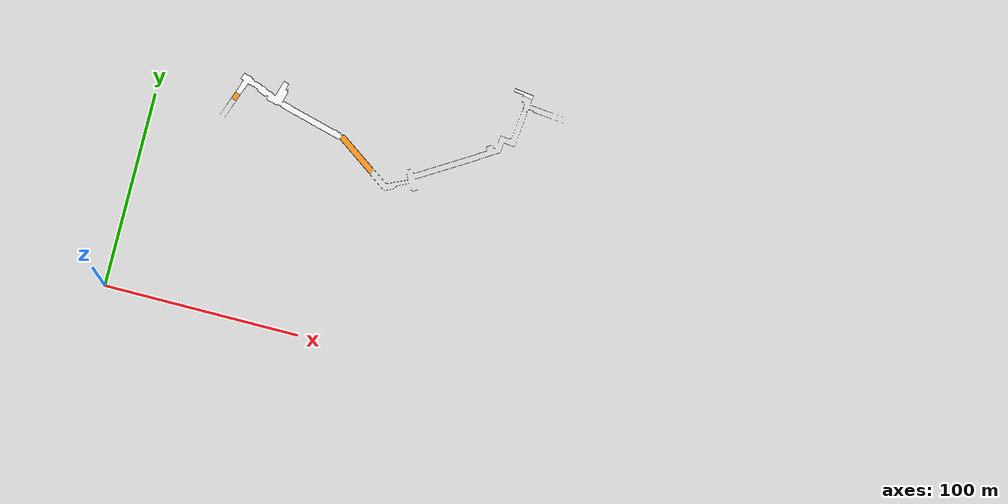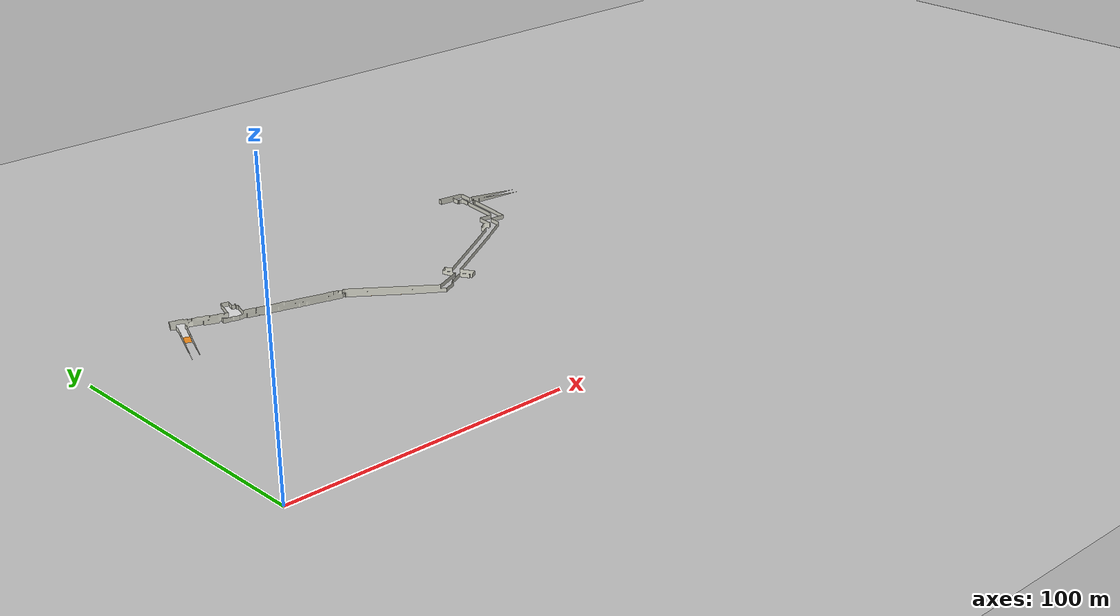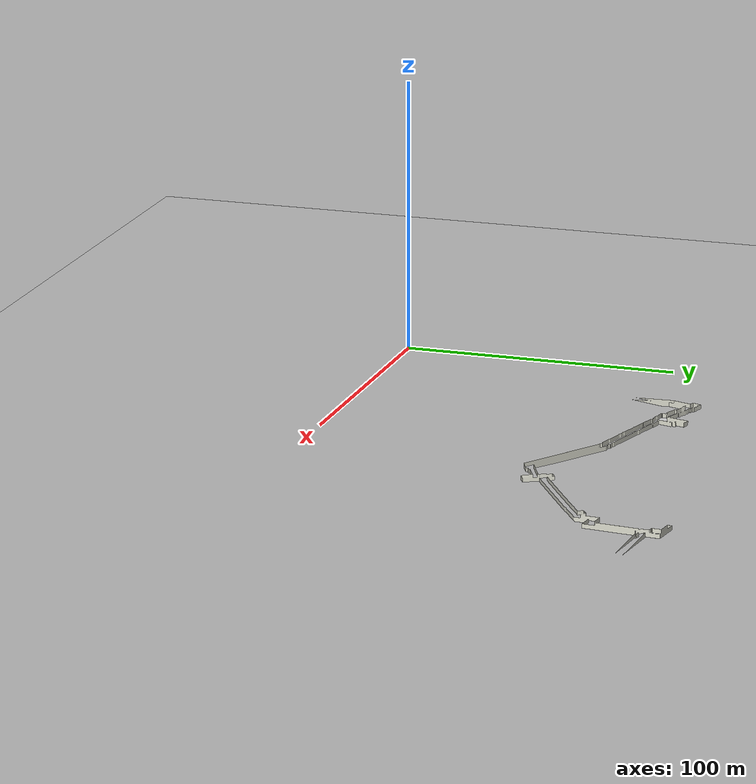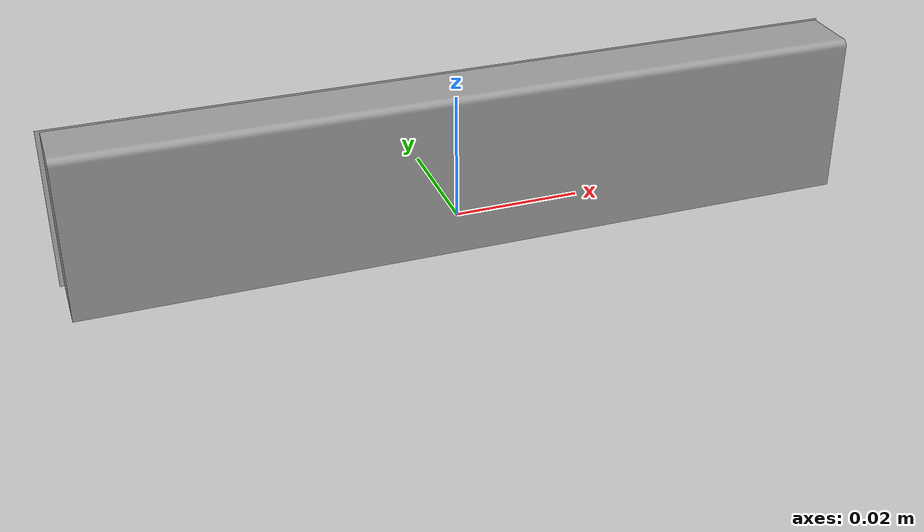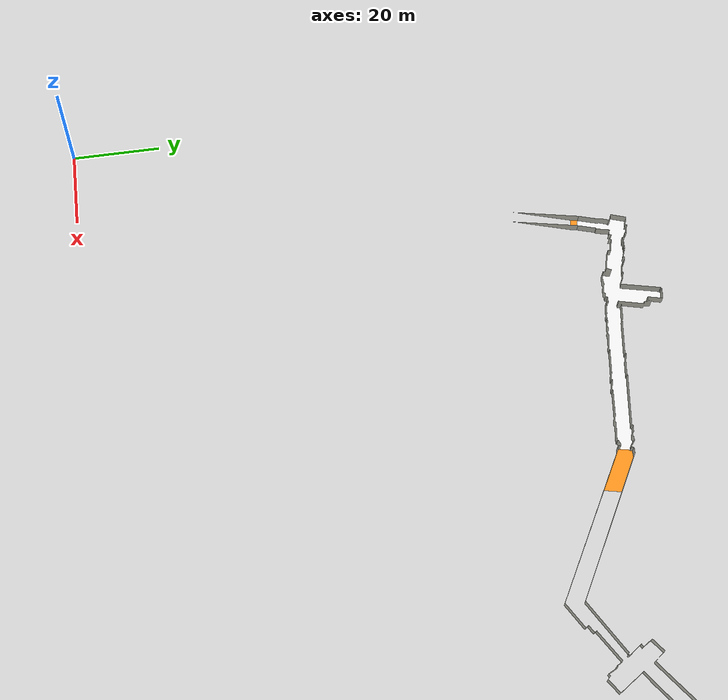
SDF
<sdf version="1.6">
 <world name="default">
  <physics type="ode">
   <gravity>0.000000 0.000000 -9.810000</gravity>
   <ode>
    <solver><type>quick</type><iters>20</iters><sor>1.000000</sor></solver>
    <constraints>
     <cfm>0.000000</cfm>
     <erp>0.200000</erp>
     <contact_max_correcting_vel>100.000000</contact_max_correcting_vel>
     <contact_surface_layer>0.000000</contact_surface_layer>
    </constraints>
   </ode>
   <real_time_update_rate>1000.000000</real_time_update_rate>
   <max_step_size>0.001000</max_step_size>
   <real_time_factor>1.000000</real_time_factor>
   <max_contacts>20</max_contacts>
  </physics>
  <light name="sun" type="directional">
   <pose>0 0 10 0 -0 0</pose>
   <diffuse>0.8 0.8 0.8 1</diffuse>
   <specular>0.2 0.2 0.2 1</specular>
   <attenuation>
    <range>1000</range>
    <constant>0.9</constant>
    <linear>0.01</linear>
    <quadratic>0.001</quadratic>
   </attenuation>
   <direction>-0.5 0.1 -0.9</direction>
  </light>
  <model name="ground_plane">
   <static>1</static>
   <link name="link">
    <visual name="visual">
     <cast_shadows>0</cast_shadows>
     <geometry><plane><normal>0 0 1</normal><size>100 100</size></plane></geometry>
     <material>
      <script><uri>file://media/materials/scripts/gazebo.material</uri><name>Gazebo/Grey</name></script>
     </material>
    </visual>
    <velocity_decay><linear>0</linear><angular>0</angular></velocity_decay>
   </link>
  </model>
  <scene><ambient>0.4 0.4 0.4 1</ambient><background>0.7 0.7 0.7 1</background><shadows>1</shadows></scene>
  <include><uri>model://med_1</uri></include>
  <model name="hospital">
   <static>1</static>
   <link name="link">
    <collision name="colision1">
     <geometry><mesh><uri>model://hospital_map/meshes/hospital_map.stl</uri><scale>1 1 1</scale></mesh></geometry>
     <surface><friction><ode><mu>1000.000000</mu><mu2>1000.000000</mu2></ode></friction></surface>
    </collision>
    <velocity_decay><linear>0.000000</linear><angular>0.000000</angular></velocity_decay>
    <visual name="visual_Floor_1">
     <geometry><mesh><uri>model://hospital_map/meshes/g1.stl</uri><scale>0.1 0.1 0.1</scale></mesh></geometry>
     <material>
      <script><uri>file://media/materials/scripts/gazebo.material</uri><name>Gazebo/White</name></script>
     </material>
    </visual>
    <visual name="visual_Wall_1">
     <geometry><mesh><uri>model://hospital_map/meshes/w1.stl</uri><scale>0.1 0.1 0.1</scale></mesh></geometry>
     <material>
      <script><uri>file://media/materials/scripts/gazebo.material</uri><name>Gazebo/PaintedWall</name></script>
     </material>
    </visual>
    <visual name="visual_Floor_Ramp_1">
     <geometry><mesh><uri>model://hospital_map/meshes/gr1.stl</uri><scale>0.1 0.1 0.1</scale></mesh></geometry>
     <material>
      <script><uri>file://media/materials/scripts/gazebo.material</uri><name>Gazebo/Orange</name></script>
     </material>
    </visual>
    <visual name="visual_Wall_Ramp_1">
     <geometry><mesh><uri>model://hospital_map/meshes/wr1.stl</uri><scale>0.1 0.1 0.1</scale></mesh></geometry>
     <material>
      <script><uri>file://media/materials/scripts/gazebo.material</uri><name>Gazebo/PaintedWall</name></script>
     </material>
    </visual>
    <visual name="visual_Floor_2">
     <geometry><mesh><uri>model://hospital_map/meshes/g2.stl</uri><scale>0.1 0.1 0.1</scale></mesh></geometry>
     <material>
      <script><uri>file://media/materials/scripts/gazebo.material</uri><name>Gazebo/White</name></script>
     </material>
    </visual>
    <visual name="visual_Wall_2">
     <geometry><mesh><uri>model://hospital_map/meshes/w2.stl</uri><scale>0.1 0.1 0.1</scale></mesh></geometry>
     <material>
      <script><uri>file://media/materials/scripts/gazebo.material</uri><name>Gazebo/PaintedWall</name></script>
     </material>
    </visual>
    <visual name="visual_Floor_Ramp_2">
     <geometry><mesh><uri>model://hospital_map/meshes/gr2.stl</uri><scale>0.1 0.1 0.1</scale></mesh></geometry>
     <material>
      <script><uri>file://media/materials/scripts/gazebo.material</uri><name>Gazebo/Orange</name></script>
     </material>
    </visual>
    <visual name="visual_Wall_Ramp_2">
     <geometry><mesh><uri>model://hospital_map/meshes/wr2.stl</uri><scale>0.1 0.1 0.1</scale></mesh></geometry>
     <material>
      <script><uri>file://media/materials/scripts/gazebo.material</uri><name>Gazebo/PaintedWall</name></script>
     </material>
    </visual>
    <visual name="visual_Floor_3">
     <geometry><mesh><uri>model://hospital_map/meshes/g3.stl</uri><scale>0.1 0.1 0.1</scale></mesh></geometry>
     <material>
      <script><uri>file://media/materials/scripts/gazebo.material</uri><name>Gazebo/White</name></script>
     </material>
    </visual>
    <visual name="visual_Wall_3">
     <geometry><mesh><uri>model://hospital_map/meshes/w3.stl</uri><scale>0.1 0.1 0.1</scale></mesh></geometry>
     <material>
      <script><uri>file://media/materials/scripts/gazebo.material</uri><name>Gazebo/PaintedWall</name></script>
     </material>
    </visual>
    <visual name="visual_Floor_Ramp_3">
     <geometry><mesh><uri>model://hospital_map/meshes/gr3.stl</uri><scale>0.1 0.1 0.1</scale></mesh></geometry>
     <material>
      <script><uri>file://media/materials/scripts/gazebo.material</uri><name>Gazebo/Orange</name></script>
     </material>
    </visual>
    <visual name="visual_Wall_Ramp_3">
     <geometry><mesh><uri>model://hospital_map/meshes/wr3.stl</uri><scale>0.1 0.1 0.1</scale></mesh></geometry>
     <material>
      <script><uri>file://media/materials/scripts/gazebo.material</uri><name>Gazebo/PaintedWall</name></script>
     </material>
    </visual>
    <visual name="visual_Floor_4">
     <geometry><mesh><uri>model://hospital_map/meshes/g4.stl</uri><scale>0.1 0.1 0.1</scale></mesh></geometry>
     <material>
      <script><uri>file://media/materials/scripts/gazebo.material</uri><name>Gazebo/White</name></script>
     </material>
    </visual>
    <visual name="visual_Wall_4">
     <geometry><mesh><uri>model://hospital_map/meshes/w4.stl</uri><scale>0.1 0.1 0.1</scale></mesh></geometry>
     <material>
      <script><uri>file://media/materials/scripts/gazebo.material</uri><name>Gazebo/PaintedWall</name></script>
     </material>
    </visual>
    <visual name="visual_Floor_Ramp_4">
     <geometry><mesh><uri>model://hospital_map/meshes/gr4.stl</uri><scale>0.1 0.1 0.1</scale></mesh></geometry>
     <material>
      <script><uri>file://media/materials/scripts/gazebo.material</uri><name>Gazebo/Orange</name></script>
     </material>
    </visual>
    <visual name="visual_Wall_Ramp_4">
     <geometry><mesh><uri>model://hospital_map/meshes/wr1.stl</uri><scale>0.1 0.1 0.1</scale></mesh></geometry>
     <material>
      <script><uri>file://media/materials/scripts/gazebo.material</uri><name>Gazebo/PaintedWall</name></script>
     </material>
    </visual>
    <visual name="visual_Floor_5">
     <geometry><mesh><uri>model://hospital_map/meshes/g5.stl</uri><scale>0.1 0.1 0.1</scale></mesh></geometry>
     <material>
      <script><uri>file://media/materials/scripts/gazebo.material</uri><name>Gazebo/White</name></script>
     </material>
    </visual>
    <visual name="visual_Wall_5">
     <geometry><mesh><uri>model://hospital_map/meshes/w5.stl</uri><scale>0.1 0.1 0.1</scale></mesh></geometry>
     <material>
      <script><uri>file://media/materials/scripts/gazebo.material</uri><name>Gazebo/PaintedWall</name></script>
     </material>
    </visual>
    <visual name="visual_Floor_Ramp_5">
     <geometry><mesh><uri>model://hospital_map/meshes/gr5.stl</uri><scale>0.1 0.1 0.1</scale></mesh></geometry>
     <material>
      <script><uri>file://media/materials/scripts/gazebo.material</uri><name>Gazebo/Orange</name></script>
     </material>
    </visual>
    <visual name="visual_Wall_Ramp_5">
     <geometry><mesh><uri>model://hospital_map/meshes/wr5.stl</uri><scale>0.1 0.1 0.1</scale></mesh></geometry>
     <material>
      <script><uri>file://media/materials/scripts/gazebo.material</uri><name>Gazebo/PaintedWall</name></script>
     </material>
    </visual>
    <visual name="visual_Floor_6">
     <geometry><mesh><uri>model://hospital_map/meshes/g6.stl</uri><scale>0.1 0.1 0.1</scale></mesh></geometry>
     <material>
      <script><uri>file://media/materials/scripts/gazebo.material</uri><name>Gazebo/White</name></script>
     </material>
    </visual>
    <visual name="visual_Wall_6">
     <geometry><mesh><uri>model://hospital_map/meshes/w6.stl</uri><scale>0.1 0.1 0.1</scale></mesh></geometry>
     <material>
      <script><uri>file://media/materials/scripts/gazebo.material</uri><name>Gazebo/PaintedWall</name></script>
     </material>
    </visual>
    <visual name="visual_Floor_Ramp_6">
     <geometry><mesh><uri>model://hospital_map/meshes/gr6.stl</uri><scale>0.1 0.1 0.1</scale></mesh></geometry>
     <material>
      <script><uri>file://media/materials/scripts/gazebo.material</uri><name>Gazebo/Orange</name></script>
     </material>
    </visual>
    <visual name="visual_Wall_Ramp_6">
     <geometry><mesh><uri>model://hospital_map/meshes/wr6.stl</uri><scale>0.1 0.1 0.1</scale></mesh></geometry>
     <material>
      <script><uri>file://media/materials/scripts/gazebo.material</uri><name>Gazebo/PaintedWall</name></script>
     </material>
    </visual>
    <visual name="visual_Floor_7">
     <geometry><mesh><uri>model://hospital_map/meshes/g7.stl</uri><scale>0.1 0.1 0.1</scale></mesh></geometry>
     <material>
      <script><uri>file://media/materials/scripts/gazebo.material</uri><name>Gazebo/White</name></script>
     </material>
    </visual>
    <visual name="visual_Wall_7">
     <geometry><mesh><uri>model://hospital_map/meshes/w7.stl</uri><scale>0.1 0.1 0.1</scale></mesh></geometry>
     <material>
      <script><uri>file://media/materials/scripts/gazebo.material</uri><name>Gazebo/PaintedWall</name></script>
     </material>
    </visual>
   </link>
  </model>
 </world>
</sdf>

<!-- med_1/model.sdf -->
<sdf version='1.7'>
  <model name='med_1'>
    <link name='link_0'>
      <inertial>
        <mass>1</mass>
        <inertia>
          <ixx>0.166667</ixx>
          <ixy>0</ixy>
          <ixz>0</ixz>
          <iyy>0.166667</iyy>
          <iyz>0</iyz>
          <izz>0.166667</izz>
        </inertia>
        <pose>0 0 0 0 -0 0</pose>
      </inertial>
      <pose>0 -0.005 -0.025 0 -0 0</pose>
      <gravity>1</gravity>
      <self_collide>0</self_collide>
      <kinematic>0</kinematic>
      <enable_wind>0</enable_wind>
      <visual name='visual'>
        <pose>0 0.005 0.025 0 -0 0</pose>
        <geometry>
          <mesh>
            <uri>model://med_1/meshes/med-1.dae</uri>
            <scale>0.01 0.01 0.01</scale>
          </mesh>
        </geometry>
        <material>
          <shader type='pixel'>
            <normal_map>__default__</normal_map>
          </shader>
          <emissive>0 0 0 1</emissive>
        </material>
        <transparency>0</transparency>
        <cast_shadows>1</cast_shadows>
      </visual>
      <collision name='collision'>
        <laser_retro>0</laser_retro>
        <max_contacts>10</max_contacts>
        <pose>0 0.005 0.025 0 -0 0</pose>
        <geometry>
          <mesh>
            <uri>model://med_1/meshes/med-1.dae</uri>
            <scale>0.01 0.01 0.01</scale>
          </mesh>
        </geometry>
        <surface>
          <friction>
            <ode>
              <mu>1</mu>
              <mu2>1</mu2>
              <fdir1>0 0 0</fdir1>
              <slip1>0</slip1>
              <slip2>0</slip2>
            </ode>
            <torsional>
              <coefficient>1</coefficient>
              <patch_radius>0</patch_radius>
              <surface_radius>0</surface_radius>
              <use_patch_radius>1</use_patch_radius>
              <ode>
                <slip>0</slip>
              </ode>
            </torsional>
          </friction>
          <bounce>
            <restitution_coefficient>0</restitution_coefficient>
            <threshold>1e+06</threshold>
          </bounce>
          <contact>
            <collide_without_contact>0</collide_without_contact>
            <collide_without_contact_bitmask>1</collide_without_contact_bitmask>
            <collide_bitmask>1</collide_bitmask>
            <ode>
              <soft_cfm>0</soft_cfm>
              <soft_erp>0.2</soft_erp>
              <kp>1e+13</kp>
              <kd>1</kd>
              <max_vel>0.01</max_vel>
              <min_depth>0</min_depth>
            </ode>
            <bullet>
              <split_impulse>1</split_impulse>
              <split_impulse_penetration_threshold>-0.01</split_impulse_penetration_threshold>
              <soft_cfm>0</soft_cfm>
              <soft_erp>0.2</soft_erp>
              <kp>1e+13</kp>
              <kd>1</kd>
            </bullet>
          </contact>
        </surface>
      </collision>
    </link>
    <static>0</static>
    <allow_auto_disable>1</allow_auto_disable>
  </model>
</sdf>
